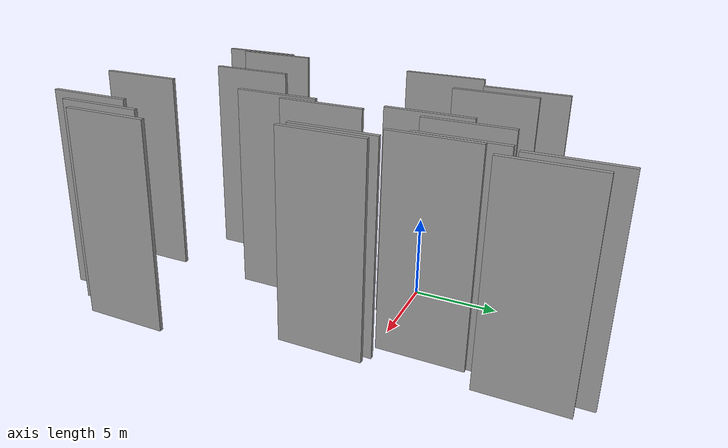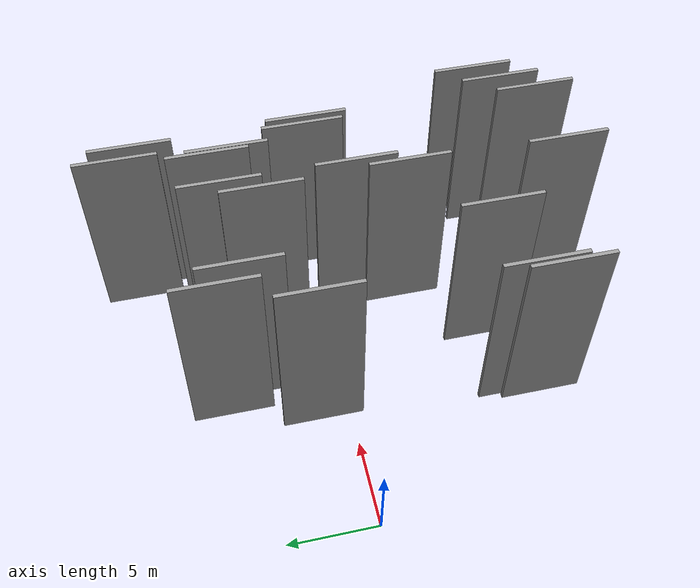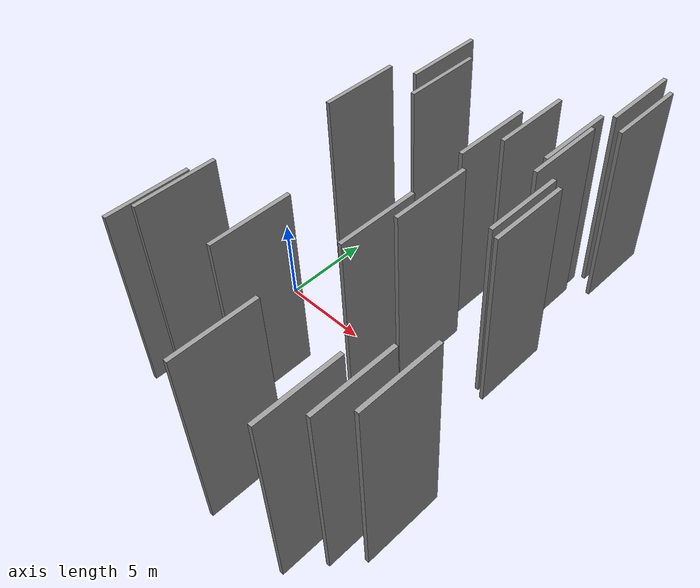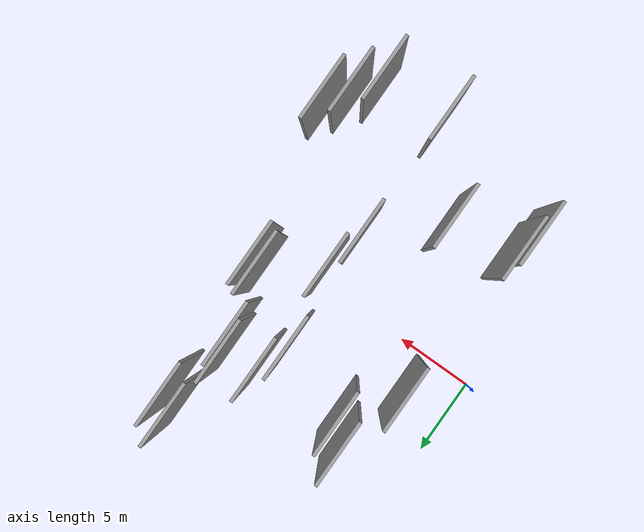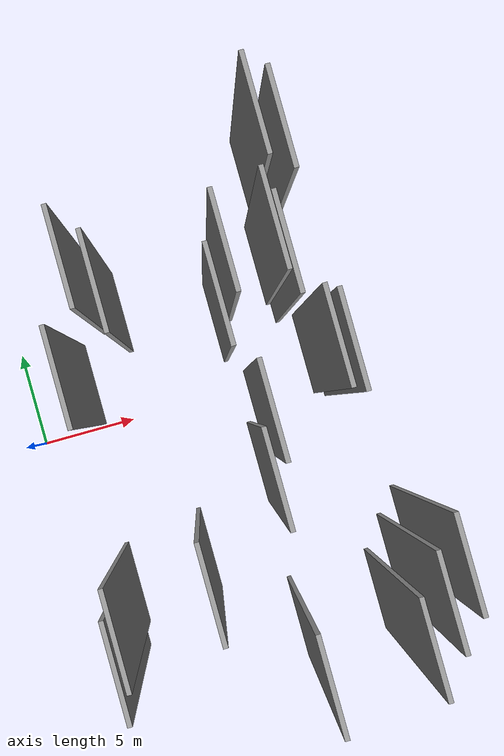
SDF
<sdf version="1.6">
 <world name="default">
  <scene>
   <sky><clouds><speed>12</speed></clouds></sky>
   <ambient>0.4 0.4 0.4 1</ambient>
   <background>0.7 0.7 0.7 1</background>
   <shadows>1</shadows>
  </scene>
  <gravity>0 0 -9.8066</gravity>
  <magnetic_field>6e-06 2.3e-05 -4.2e-05</magnetic_field>
  <physics default="0" name="default_physics" type="ode">
   <ode>
    <solver>
     <type>quick</type>
     <iters>10</iters>
     <sor>1.0</sor>
     <use_dynamic_moi_rescaling>0</use_dynamic_moi_rescaling>
    </solver>
    <constraints>
     <cfm>0</cfm>
     <erp>0.2</erp>
     <contact_max_correcting_vel>100</contact_max_correcting_vel>
     <contact_surface_layer>0.001</contact_surface_layer>
    </constraints>
   </ode>
   <max_step_size>0.004</max_step_size>
   <real_time_factor>1</real_time_factor>
   <real_time_update_rate>250</real_time_update_rate>
  </physics>
  <light name="sun" type="directional">
   <pose>0 0 10 0 0 0</pose>
   <diffuse>0.8 0.8 0.8 1</diffuse>
   <specular>0.2 0.2 0.2 1</specular>
   <attenuation>
    <range>1000</range>
    <constant>0.9</constant>
    <linear>0.01</linear>
    <quadratic>0.001</quadratic>
   </attenuation>
   <direction>-0.5 0.1 -0.9</direction>
  </light>
  <model name="grey_wall_1">
   <static>1</static>
   <pose>13.5607 4.6395 5.0 0.000000 0.000000 1.570796</pose>
   <link name="link">
    <pose>0 0 5.00 0 0 0</pose>
    <collision name="collision"><geometry><box><size>4.00 0.2 10.00</size></box></geometry></collision>
    <visual name="visual">
     <cast_shadows>0</cast_shadows>
     <geometry><box><size>4.00 0.2 10.00</size></box></geometry>
     <material>
      <script>
       <uri>model://grey_wall/materials/scripts</uri>
       <uri>model://grey_wall/materials/textures</uri>
       <name>vrc/grey_wall</name>
      </script>
     </material>
    </visual>
   </link>
  </model>
  <model name="grey_wall_2">
   <static>1</static>
   <pose>13.7890 9.8942 5.0 0.000000 0.000000 1.570796</pose>
   <link name="link">
    <pose>0 0 5.00 0 0 0</pose>
    <collision name="collision"><geometry><box><size>4.00 0.2 10.00</size></box></geometry></collision>
    <visual name="visual">
     <cast_shadows>0</cast_shadows>
     <geometry><box><size>4.00 0.2 10.00</size></box></geometry>
     <material>
      <script>
       <uri>model://grey_wall/materials/scripts</uri>
       <uri>model://grey_wall/materials/textures</uri>
       <name>vrc/grey_wall</name>
      </script>
     </material>
    </visual>
   </link>
  </model>
  <model name="grey_wall_3">
   <static>1</static>
   <pose>7.3495 -7.0868 5.0 0.000000 0.000000 1.570796</pose>
   <link name="link">
    <pose>0 0 5.00 0 0 0</pose>
    <collision name="collision"><geometry><box><size>4.00 0.2 10.00</size></box></geometry></collision>
    <visual name="visual">
     <cast_shadows>0</cast_shadows>
     <geometry><box><size>4.00 0.2 10.00</size></box></geometry>
     <material>
      <script>
       <uri>model://grey_wall/materials/scripts</uri>
       <uri>model://grey_wall/materials/textures</uri>
       <name>vrc/grey_wall</name>
      </script>
     </material>
    </visual>
   </link>
  </model>
  <model name="grey_wall_4">
   <static>1</static>
   <pose>4.0203 2.0928 5.0 0.000000 0.000000 1.570796</pose>
   <link name="link">
    <pose>0 0 5.00 0 0 0</pose>
    <collision name="collision"><geometry><box><size>4.00 0.2 10.00</size></box></geometry></collision>
    <visual name="visual">
     <cast_shadows>0</cast_shadows>
     <geometry><box><size>4.00 0.2 10.00</size></box></geometry>
     <material>
      <script>
       <uri>model://grey_wall/materials/scripts</uri>
       <uri>model://grey_wall/materials/textures</uri>
       <name>vrc/grey_wall</name>
      </script>
     </material>
    </visual>
   </link>
  </model>
  <model name="grey_wall_5">
   <static>1</static>
   <pose>10.5948 3.4581 5.0 0.000000 0.000000 1.570796</pose>
   <link name="link">
    <pose>0 0 5.00 0 0 0</pose>
    <collision name="collision"><geometry><box><size>4.00 0.2 10.00</size></box></geometry></collision>
    <visual name="visual">
     <cast_shadows>0</cast_shadows>
     <geometry><box><size>4.00 0.2 10.00</size></box></geometry>
     <material>
      <script>
       <uri>model://grey_wall/materials/scripts</uri>
       <uri>model://grey_wall/materials/textures</uri>
       <name>vrc/grey_wall</name>
      </script>
     </material>
    </visual>
   </link>
  </model>
  <model name="grey_wall_6">
   <static>1</static>
   <pose>11.3721 -1.1995 5.0 0.000000 0.000000 1.570796</pose>
   <link name="link">
    <pose>0 0 5.00 0 0 0</pose>
    <collision name="collision"><geometry><box><size>4.00 0.2 10.00</size></box></geometry></collision>
    <visual name="visual">
     <cast_shadows>0</cast_shadows>
     <geometry><box><size>4.00 0.2 10.00</size></box></geometry>
     <material>
      <script>
       <uri>model://grey_wall/materials/scripts</uri>
       <uri>model://grey_wall/materials/textures</uri>
       <name>vrc/grey_wall</name>
      </script>
     </material>
    </visual>
   </link>
  </model>
  <model name="grey_wall_7">
   <static>1</static>
   <pose>5.2757 6.3581 5.0 0.000000 0.000000 1.570796</pose>
   <link name="link">
    <pose>0 0 5.00 0 0 0</pose>
    <collision name="collision"><geometry><box><size>4.00 0.2 10.00</size></box></geometry></collision>
    <visual name="visual">
     <cast_shadows>0</cast_shadows>
     <geometry><box><size>4.00 0.2 10.00</size></box></geometry>
     <material>
      <script>
       <uri>model://grey_wall/materials/scripts</uri>
       <uri>model://grey_wall/materials/textures</uri>
       <name>vrc/grey_wall</name>
      </script>
     </material>
    </visual>
   </link>
  </model>
  <model name="grey_wall_8">
   <static>1</static>
   <pose>16.7662 -8.5645 5.0 0.000000 0.000000 1.570796</pose>
   <link name="link">
    <pose>0 0 5.00 0 0 0</pose>
    <collision name="collision"><geometry><box><size>4.00 0.2 10.00</size></box></geometry></collision>
    <visual name="visual">
     <cast_shadows>0</cast_shadows>
     <geometry><box><size>4.00 0.2 10.00</size></box></geometry>
     <material>
      <script>
       <uri>model://grey_wall/materials/scripts</uri>
       <uri>model://grey_wall/materials/textures</uri>
       <name>vrc/grey_wall</name>
      </script>
     </material>
    </visual>
   </link>
  </model>
  <model name="grey_wall_9">
   <static>1</static>
   <pose>14.5878 9.1472 5.0 0.000000 0.000000 1.570796</pose>
   <link name="link">
    <pose>0 0 5.00 0 0 0</pose>
    <collision name="collision"><geometry><box><size>4.00 0.2 10.00</size></box></geometry></collision>
    <visual name="visual">
     <cast_shadows>0</cast_shadows>
     <geometry><box><size>4.00 0.2 10.00</size></box></geometry>
     <material>
      <script>
       <uri>model://grey_wall/materials/scripts</uri>
       <uri>model://grey_wall/materials/textures</uri>
       <name>vrc/grey_wall</name>
      </script>
     </material>
    </visual>
   </link>
  </model>
  <model name="grey_wall_10">
   <static>1</static>
   <pose>13.3426 5.6097 5.0 0.000000 0.000000 1.570796</pose>
   <link name="link">
    <pose>0 0 5.00 0 0 0</pose>
    <collision name="collision"><geometry><box><size>4.00 0.2 10.00</size></box></geometry></collision>
    <visual name="visual">
     <cast_shadows>0</cast_shadows>
     <geometry><box><size>4.00 0.2 10.00</size></box></geometry>
     <material>
      <script>
       <uri>model://grey_wall/materials/scripts</uri>
       <uri>model://grey_wall/materials/textures</uri>
       <name>vrc/grey_wall</name>
      </script>
     </material>
    </visual>
   </link>
  </model>
  <model name="grey_wall_11">
   <static>1</static>
   <pose>14.4274 0.8035 5.0 0.000000 0.000000 1.570796</pose>
   <link name="link">
    <pose>0 0 5.00 0 0 0</pose>
    <collision name="collision"><geometry><box><size>4.00 0.2 10.00</size></box></geometry></collision>
    <visual name="visual">
     <cast_shadows>0</cast_shadows>
     <geometry><box><size>4.00 0.2 10.00</size></box></geometry>
     <material>
      <script>
       <uri>model://grey_wall/materials/scripts</uri>
       <uri>model://grey_wall/materials/textures</uri>
       <name>vrc/grey_wall</name>
      </script>
     </material>
    </visual>
   </link>
  </model>
  <model name="grey_wall_12">
   <static>1</static>
   <pose>10.8517 -3.6834 5.0 0.000000 0.000000 1.570796</pose>
   <link name="link">
    <pose>0 0 5.00 0 0 0</pose>
    <collision name="collision"><geometry><box><size>4.00 0.2 10.00</size></box></geometry></collision>
    <visual name="visual">
     <cast_shadows>0</cast_shadows>
     <geometry><box><size>4.00 0.2 10.00</size></box></geometry>
     <material>
      <script>
       <uri>model://grey_wall/materials/scripts</uri>
       <uri>model://grey_wall/materials/textures</uri>
       <name>vrc/grey_wall</name>
      </script>
     </material>
    </visual>
   </link>
  </model>
  <model name="grey_wall_13">
   <static>1</static>
   <pose>10.7106 -11.4935 5.0 0.000000 0.000000 1.570796</pose>
   <link name="link">
    <pose>0 0 5.00 0 0 0</pose>
    <collision name="collision"><geometry><box><size>4.00 0.2 10.00</size></box></geometry></collision>
    <visual name="visual">
     <cast_shadows>0</cast_shadows>
     <geometry><box><size>4.00 0.2 10.00</size></box></geometry>
     <material>
      <script>
       <uri>model://grey_wall/materials/scripts</uri>
       <uri>model://grey_wall/materials/textures</uri>
       <name>vrc/grey_wall</name>
      </script>
     </material>
    </visual>
   </link>
  </model>
  <model name="grey_wall_14">
   <static>1</static>
   <pose>14.7085 -11.2051 5.0 0.000000 0.000000 1.570796</pose>
   <link name="link">
    <pose>0 0 5.00 0 0 0</pose>
    <collision name="collision"><geometry><box><size>4.00 0.2 10.00</size></box></geometry></collision>
    <visual name="visual">
     <cast_shadows>0</cast_shadows>
     <geometry><box><size>4.00 0.2 10.00</size></box></geometry>
     <material>
      <script>
       <uri>model://grey_wall/materials/scripts</uri>
       <uri>model://grey_wall/materials/textures</uri>
       <name>vrc/grey_wall</name>
      </script>
     </material>
    </visual>
   </link>
  </model>
  <model name="grey_wall_15">
   <static>1</static>
   <pose>15.7704 -9.7218 5.0 0.000000 0.000000 1.570796</pose>
   <link name="link">
    <pose>0 0 5.00 0 0 0</pose>
    <collision name="collision"><geometry><box><size>4.00 0.2 10.00</size></box></geometry></collision>
    <visual name="visual">
     <cast_shadows>0</cast_shadows>
     <geometry><box><size>4.00 0.2 10.00</size></box></geometry>
     <material>
      <script>
       <uri>model://grey_wall/materials/scripts</uri>
       <uri>model://grey_wall/materials/textures</uri>
       <name>vrc/grey_wall</name>
      </script>
     </material>
    </visual>
   </link>
  </model>
  <model name="grey_wall_16">
   <static>1</static>
   <pose>14.9127 0.5328 5.0 0.000000 0.000000 1.570796</pose>
   <link name="link">
    <pose>0 0 5.00 0 0 0</pose>
    <collision name="collision"><geometry><box><size>4.00 0.2 10.00</size></box></geometry></collision>
    <visual name="visual">
     <cast_shadows>0</cast_shadows>
     <geometry><box><size>4.00 0.2 10.00</size></box></geometry>
     <material>
      <script>
       <uri>model://grey_wall/materials/scripts</uri>
       <uri>model://grey_wall/materials/textures</uri>
       <name>vrc/grey_wall</name>
      </script>
     </material>
    </visual>
   </link>
  </model>
  <model name="grey_wall_17">
   <static>1</static>
   <pose>3.2291 -8.8997 5.0 0.000000 0.000000 1.570796</pose>
   <link name="link">
    <pose>0 0 5.00 0 0 0</pose>
    <collision name="collision"><geometry><box><size>4.00 0.2 10.00</size></box></geometry></collision>
    <visual name="visual">
     <cast_shadows>0</cast_shadows>
     <geometry><box><size>4.00 0.2 10.00</size></box></geometry>
     <material>
      <script>
       <uri>model://grey_wall/materials/scripts</uri>
       <uri>model://grey_wall/materials/textures</uri>
       <name>vrc/grey_wall</name>
      </script>
     </material>
    </visual>
   </link>
  </model>
  <model name="grey_wall_18">
   <static>1</static>
   <pose>11.3044 5.3229 5.0 0.000000 0.000000 1.570796</pose>
   <link name="link">
    <pose>0 0 5.00 0 0 0</pose>
    <collision name="collision"><geometry><box><size>4.00 0.2 10.00</size></box></geometry></collision>
    <visual name="visual">
     <cast_shadows>0</cast_shadows>
     <geometry><box><size>4.00 0.2 10.00</size></box></geometry>
     <material>
      <script>
       <uri>model://grey_wall/materials/scripts</uri>
       <uri>model://grey_wall/materials/textures</uri>
       <name>vrc/grey_wall</name>
      </script>
     </material>
    </visual>
   </link>
  </model>
  <model name="grey_wall_19">
   <static>1</static>
   <pose>3.5184 -7.7719 5.0 0.000000 0.000000 1.570796</pose>
   <link name="link">
    <pose>0 0 5.00 0 0 0</pose>
    <collision name="collision"><geometry><box><size>4.00 0.2 10.00</size></box></geometry></collision>
    <visual name="visual">
     <cast_shadows>0</cast_shadows>
     <geometry><box><size>4.00 0.2 10.00</size></box></geometry>
     <material>
      <script>
       <uri>model://grey_wall/materials/scripts</uri>
       <uri>model://grey_wall/materials/textures</uri>
       <name>vrc/grey_wall</name>
      </script>
     </material>
    </visual>
   </link>
  </model>
  <model name="grey_wall_20">
   <static>1</static>
   <pose>6.2541 5.1603 5.0 0.000000 0.000000 1.570796</pose>
   <link name="link">
    <pose>0 0 5.00 0 0 0</pose>
    <collision name="collision"><geometry><box><size>4.00 0.2 10.00</size></box></geometry></collision>
    <visual name="visual">
     <cast_shadows>0</cast_shadows>
     <geometry><box><size>4.00 0.2 10.00</size></box></geometry>
     <material>
      <script>
       <uri>model://grey_wall/materials/scripts</uri>
       <uri>model://grey_wall/materials/textures</uri>
       <name>vrc/grey_wall</name>
      </script>
     </material>
    </visual>
   </link>
  </model>
 </world>
</sdf>
